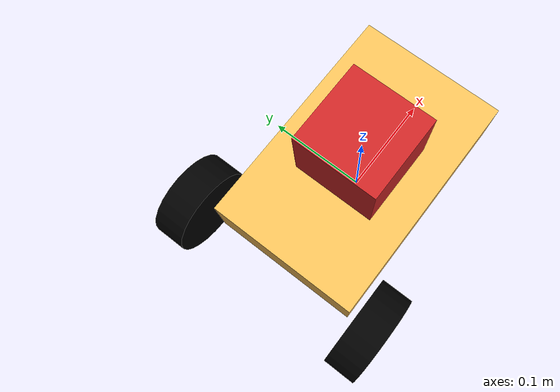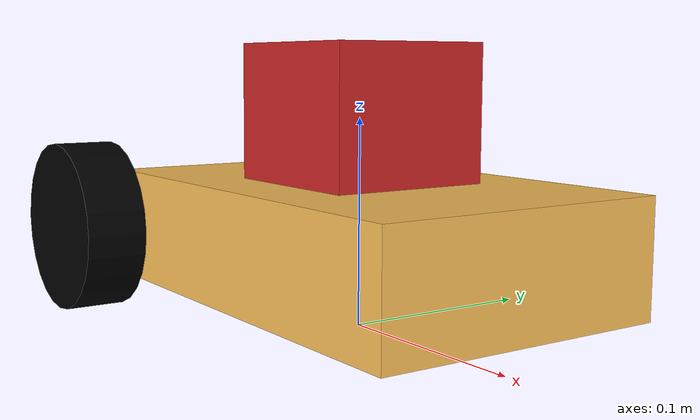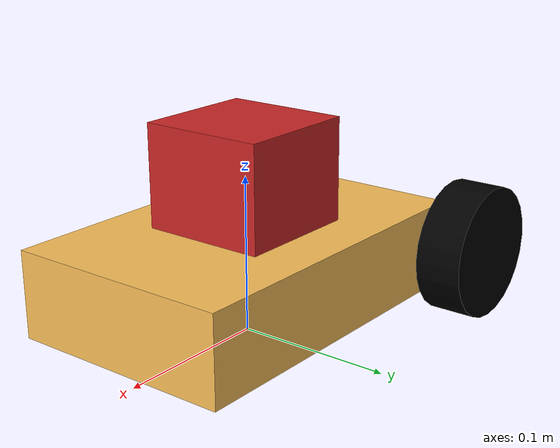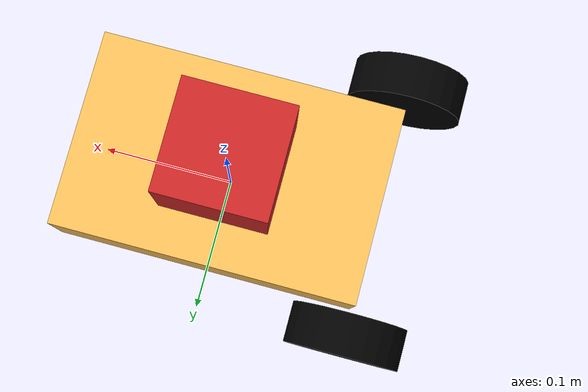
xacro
<?xml version="1.0"?>
<robot name="model_with_plugins"
       xmlns:xacro="http://www.ros.org/wiki/xacro">

  <xacro:include filename="$(find my_description)/urdf/model.xacro" />
  <xacro:include filename="$(find gazebo_simu)/plugin/base_plugin.xacro" />
  <xacro:include filename="$(find gazebo_simu)/plugin/wheels_plugin.xacro" />
  <xacro:include filename="$(find gazebo_simu)/plugin/rplidar_plugin.xacro" />
  <xacro:include filename="$(find gazebo_simu)/plugin/motor_plugin.xacro" />

</robot>

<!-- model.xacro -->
<robot name="model"
       xmlns:xacro="http://www.ros.org/wiki/xacro">

  <xacro:include filename="$(find my_description)/urdf/parameters.xacro" />
  <xacro:include filename="$(find my_description)/urdf/utilities.xacro" />
  <xacro:include filename="$(find my_description)/urdf/base.xacro" />
  <xacro:include filename="$(find my_description)/urdf/wheels.xacro" />
  <xacro:include filename="$(find my_description)/urdf/rplidar.xacro" />
  <xacro:include filename="$(find my_description)/urdf/pointcloud.xacro" />
</robot>

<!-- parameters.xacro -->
<robot name="parameters"
       xmlns:xacro="http://www.ros.org/wiki/xacro">

  <!-- Colors -->
  <material name="Black"> <color rgba="0.0 0.0 0.0 1.0"/> </material>
  <material name="Red"> <color rgba="0.8 0.0 0.0 1.0"/> </material>
  <material name="White"> <color rgba="1.0 1.0 1.0 1.0"/> </material>
  <material name="Blue"> <color rgba="0.0 0.0 0.8 1.0"/> </material>
  <material name="Grey"> <color rgba="0.75 0.75 0.75 1.0"/> </material>
  <material name="Yellow"> <color rgba="0.98 0.75 0.35 1.0"/> </material>

  <!-- Base parameters -->
  <xacro:property name="base_length" value="0.225" />
  <xacro:property name="base_width" value="0.145" />
  <xacro:property name="base_height" value="0.055" />
  <xacro:property name="base_mass" value="1.8" /> <!-- Not measured! -->
  <xacro:property name="matrau_mass" value = "0.04">

  </xacro:property>

  <!-- Wheel parameters radius 0.0425  -->
  <xacro:property name="wheel_radius" value="0.0425" />
  <xacro:property name="wheel_height" value="0.03" />
  <xacro:property name="wheel_mass" value="0.65" /> <!-- Not measured! -->
  <xacro:property name="wheel_offset_from_balancer_shaft" value="0.045" /> <!-- Not measured! -->
  <xacro:property name="mattrau_radius" value = "0.02">

  </xacro:property>
  <!-- Lidar parameters -->
</robot>

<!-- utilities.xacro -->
<robot name="utilities"
       xmlns:xacro="http://www.ros.org/wiki/xacro">

  <xacro:macro name="cylinder_inertia" params="m r h">
    <inertia  ixx="${m*(3*r*r+h*h)/12}" ixy = "0" ixz = "0"
              iyy="${m*(3*r*r+h*h)/12}" iyz = "0"
              izz="${m*r*r/2}" />
  </xacro:macro>

  <xacro:macro name="cuboid_inertia" params="m l w h">
    <inertia  ixx="${m*(w*w+h*h)/12}" ixy = "0" ixz = "0"
              iyy="${m*(l*l+h*h)/12}" iyz = "0"
              izz="${m*(l*l+w*w)/12}" />
  </xacro:macro>
  <xacro:macro name="sphere_inertia" params="m r">
    <inertia ixx="${0.4*m*r*r}" ixy="0" ixz="0"
              iyy="${0.4*m*r*r}" iyz="0" izz="${0.4*m*r*r}"/>
  </xacro:macro>

</robot>

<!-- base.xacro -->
<robot name="base" xmlns:xacro="http://www.ros.org/wiki/xacro">

<!-- FOOTPRINT -->
  <link name="footprint_link" />

<!-- BASE -->
  <link name="base_link">
    <visual>
        <origin xyz="0 0 0" rpy="0 0 0" />
        <geometry>
            <box size="${base_length} ${base_width} ${base_height}" />
        </geometry>
        <material name="Yellow" />
    </visual>
    <collision>
        <origin xyz="0 0 0" rpy="0 0 0" />
        <geometry>
            <box size="${base_length} ${base_width} ${base_height}" />
        </geometry>
        <material name="Yellow" />
    </collision>
    <inertial>
        <mass value="${base_mass}" />
        <origin xyz="0 0 0" />
        <cuboid_inertia m="${base_mass}" l="${base_length}" w="${base_width}" h="${base_height}" />
    </inertial>
  </link>

  <joint name="base_joint" type="fixed">
    <origin xyz="0 0 ${wheel_radius}" rpy="0 0 0" />
    <parent link="footprint_link" />
    <child link="base_link" />
  </joint>

  <link name="banh_mat_trau">
    <inertial>
      <origin xyz="0.0 0.0 0.0" rpy="0.0 0.0 0.0"/>
      <mass value="${matrau_mass}"/>
      <sphere_inertia m = "${matrau_mass}" r = "${mattrau_radius}"/>
    </inertial>

    <visual>
      <origin xyz="0.0 0.0 0.0" rpy="0.0 0.0 0.0"/>
      <geometry>
        <sphere radius="${mattrau_radius}"/>
      </geometry>
      <material name="White"/>
    </visual>
    <collision>
      <origin xyz="0.0 0.0 0.0" rpy="0.0 0.0 0.0"/>
      <geometry>
        <sphere radius= "${mattrau_radius}"/>
      </geometry>
    </collision>
  </link>

  <joint name="mattrau_joint" type="fixed">
    <origin xyz="0.0285 0 -${0.0425-0.015}" rpy="-1.5707 0 0" />
    <parent link="base_link" />
    <child link="banh_mat_trau" />
  </joint>

</robot>

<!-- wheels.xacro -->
<robot name="wheels"
       xmlns:xacro="http://www.ros.org/wiki/xacro">

  <xacro:macro name="wheel" params="fb lr translateX translateY">
    <link name="wheel_${fb}_${lr}_link">
        <visual>
            <origin xyz="0 0 0" rpy="${pi/2} 0 0" />
            <geometry>
                <cylinder length="${wheel_height}" radius="${wheel_radius}" />
            </geometry>
            <material name="Black" />
        </visual>
        <collision>
            <origin xyz="0 0 0" rpy="${pi/2} 0 0" />
            <geometry>
                <cylinder length="${wheel_height}" radius="${wheel_radius}" />
            </geometry>
            <material name="Black" />
        </collision>
        <inertial>
            <mass value="${wheel_mass}" />
            <origin xyz="0 0 0" />
            <cylinder_inertia  m="${wheel_mass}" r="${wheel_radius}" h="${wheel_height}" />
        </inertial>
    </link>

    <joint name="wheel_${fb}_${lr}_joint" type="continuous">
        <axis xyz="0 1 0"/>
        <parent link="base_link" />
        <child link="wheel_${fb}_${lr}_link" />
        <origin xyz="${translateX}
                     ${translateY}
                     0"
                rpy="0 0 0" />
    </joint>
  </xacro:macro>

<!-- WHEELS -->

  <wheel fb="back" lr="left"  translateX="${-base_length/2}" translateY="${base_width/2+wheel_radius/2}" />
  <wheel fb="back" lr="right" translateX="${-base_length/2}" translateY="${-base_width/2-wheel_radius/2}" />

</robot>

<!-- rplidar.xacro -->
<robot name="sensor_rplidar" xmlns:xacro="http://ros.org/wiki/xacro">
	<!-- Joints and Links, standard URDF stuff -->
	<link name="rplidar_link">
		<collision>
			<origin xyz="0 0 0" rpy="0 0 0"/>
			<geometry>
				<box size="0.1 0.1 0.1"/>
			</geometry>
		</collision>

		<visual>
			<origin xyz="0 0 0" rpy="0 0 0"/>
			<geometry>
				<box size="0.08 0.08 0.08"/>
				<meshfile name="package://my_description/meshes/rplidar.dae" scale="0.001 0.001 0.001" />
			</geometry>
		</visual>

		<inertial>
			<mass value="1e-5"/>
			<origin xyz="0 0 0" rpy="0 0 0"/>
			<inertia ixx="1e-6" ixy="0" ixz="0" iyy="1e-6" iyz="0" izz="1e-6"/>
		</inertial>
	</link>
	<!-- Change rpy ! -->
	<joint name="rplidar_joint" type="fixed">
		<axis xyz="0 1 0"/>
		<origin xyz="0 0 0.0525" rpy="0 1.5707 0 "/>
		<parent link="base_link"/>
		<child link="rplidar_link"/>
	</joint>

</robot>

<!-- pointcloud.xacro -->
<robot name="pointcloud" xmlns:xacro="http://ros.org/wiki/xacro">
	<!-- Joints and Links, standard URDF stuff -->
	<link name="pcl_link"/>

	<joint name="pcl_joint" type="fixed">
		<axis xyz="0 0 0"/>
		<origin xyz="0 0 0" rpy="0 0 0 "/>
		<parent link="rplidar_link"/>
		<child link="pcl_link"/>
	</joint>

</robot>
